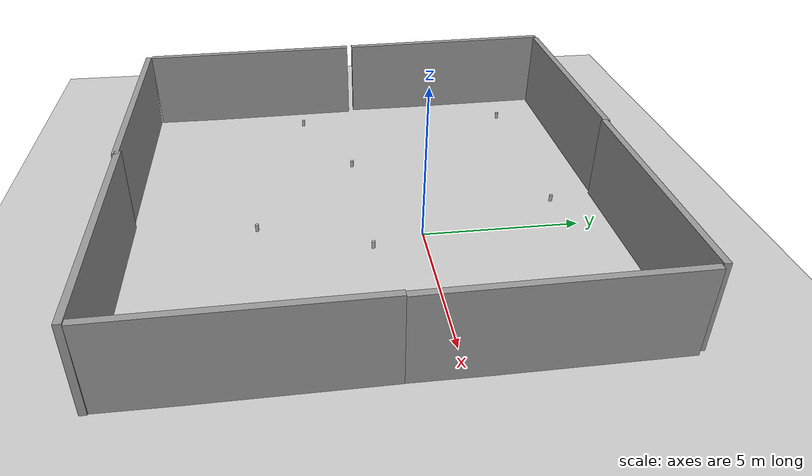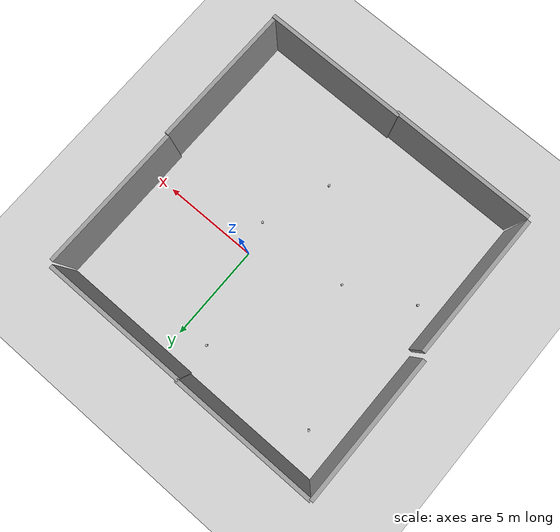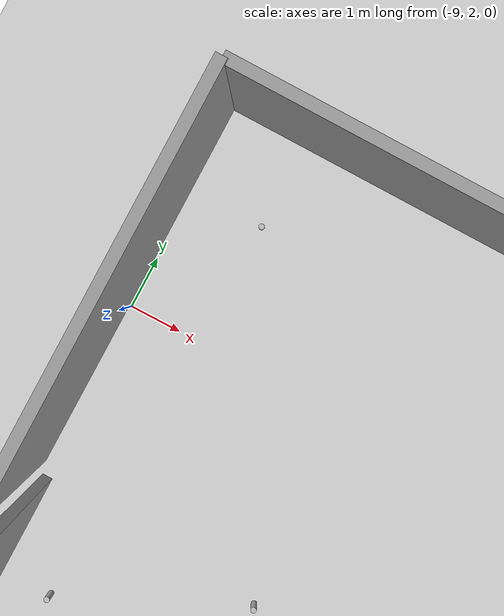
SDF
<sdf version="1.6">
 <world name="default">
  <light name="sun" type="directional">
   <pose>0 0 10 0 -0 0</pose>
   <diffuse>0.8 0.8 0.8 1</diffuse>
   <specular>0.2 0.2 0.2 1</specular>
   <attenuation>
    <range>1000</range>
    <constant>0.9</constant>
    <linear>0.01</linear>
    <quadratic>0.001</quadratic>
   </attenuation>
   <direction>-0.5 0.1 -0.9</direction>
  </light>
  <model name="ground_plane">
   <static>1</static>
   <link name="link">
    <collision name="collision">
     <geometry><plane><normal>0 0 1</normal><size>100 100</size></plane></geometry>
     <surface><friction><ode><mu>100</mu><mu2>50</mu2></ode></friction></surface>
    </collision>
    <visual name="visual">
     <cast_shadows>0</cast_shadows>
     <geometry><plane><normal>0 0 1</normal><size>100 100</size></plane></geometry>
     <material>
      <script><uri>file://media/materials/scripts/gazebo.material</uri><name>Gazebo/Grey</name></script>
     </material>
    </visual>
   </link>
  </model>
  <gravity>0 0 -9.8</gravity>
  <magnetic_field>6e-06 2.3e-05 -4.2e-05</magnetic_field>
  <atmosphere type="adiabatic"/>
  <physics name="default_physics" default="0" type="ode">
   <max_step_size>0.001</max_step_size>
   <real_time_factor>1</real_time_factor>
   <real_time_update_rate>1000</real_time_update_rate>
  </physics>
  <scene><ambient>0.4 0.4 0.4 1</ambient><background>0.7 0.7 0.7 1</background><shadows>1</shadows></scene>
  <spherical_coordinates>
   <surface_model>EARTH_WGS84</surface_model>
   <latitude_deg>0</latitude_deg>
   <longitude_deg>0</longitude_deg>
   <elevation>0</elevation>
   <heading_deg>0</heading_deg>
  </spherical_coordinates>
  <model name="grey_wall">
   <static>1</static>
   <link name="link">
    <pose>0 0 1.4 0 -0 0</pose>
    <collision name="collision"><geometry><box><size>7.5 0.2 2.8</size></box></geometry></collision>
    <visual name="visual">
     <cast_shadows>0</cast_shadows>
     <geometry><box><size>7.5 0.2 2.8</size></box></geometry>
     <material>
      <script>
       <uri>model://grey_wall/materials/scripts</uri>
       <uri>model://grey_wall/materials/textures</uri>
       <name>vrc/grey_wall</name>
      </script>
     </material>
    </visual>
   </link>
   <pose>2.06631 6.1293 0 0 -0 0</pose>
  </model>
  <model name="grey_wall_0">
   <static>1</static>
   <link name="link">
    <pose>0 0 1.4 0 -0 0</pose>
    <collision name="collision"><geometry><box><size>7.5 0.2 2.8</size></box></geometry></collision>
    <visual name="visual">
     <cast_shadows>0</cast_shadows>
     <geometry><box><size>7.5 0.2 2.8</size></box></geometry>
     <material>
      <script>
       <uri>model://grey_wall/materials/scripts</uri>
       <uri>model://grey_wall/materials/textures</uri>
       <name>vrc/grey_wall</name>
      </script>
     </material>
    </visual>
   </link>
   <pose>2.32878 -9.0557 0 0 -0 0</pose>
  </model>
  <model name="grey_wall_1">
   <static>1</static>
   <link name="link">
    <pose>0 0 1.4 0 -0 0</pose>
    <collision name="collision"><geometry><box><size>7.5 0.2 2.8</size></box></geometry></collision>
    <visual name="visual">
     <cast_shadows>0</cast_shadows>
     <geometry><box><size>7.5 0.2 2.8</size></box></geometry>
     <material>
      <script>
       <uri>model://grey_wall/materials/scripts</uri>
       <uri>model://grey_wall/materials/textures</uri>
       <name>vrc/grey_wall</name>
      </script>
     </material>
    </visual>
   </link>
   <pose>5.88882 2.21225 5e-06 -0.01704 0.013165 -1.57351</pose>
  </model>
  <model name="grey_wall_0_clone">
   <static>1</static>
   <link name="link">
    <pose>0 0 1.4 0 -0 0</pose>
    <collision name="collision"><geometry><box><size>7.5 0.2 2.8</size></box></geometry></collision>
    <visual name="visual">
     <cast_shadows>0</cast_shadows>
     <geometry><box><size>7.5 0.2 2.8</size></box></geometry>
     <material>
      <script>
       <uri>model://grey_wall/materials/scripts</uri>
       <uri>model://grey_wall/materials/textures</uri>
       <name>vrc/grey_wall</name>
      </script>
     </material>
    </visual>
   </link>
   <pose>-4.99709 -9.12244 0 0 -0 0</pose>
  </model>
  <model name="grey_wall_1_clone">
   <static>1</static>
   <link name="link">
    <pose>0 0 1.4 0 -0 0</pose>
    <collision name="collision"><geometry><box><size>7.5 0.2 2.8</size></box></geometry></collision>
    <visual name="visual">
     <cast_shadows>0</cast_shadows>
     <geometry><box><size>7.5 0.2 2.8</size></box></geometry>
     <material>
      <script>
       <uri>model://grey_wall/materials/scripts</uri>
       <uri>model://grey_wall/materials/textures</uri>
       <name>vrc/grey_wall</name>
      </script>
     </material>
    </visual>
   </link>
   <pose>5.93753 -5.29026 5e-06 -0.01704 0.013165 -1.57351</pose>
  </model>
  <model name="grey_wall_clone">
   <static>1</static>
   <link name="link">
    <pose>0 0 1.4 0 -0 0</pose>
    <collision name="collision"><geometry><box><size>7.5 0.2 2.8</size></box></geometry></collision>
    <visual name="visual">
     <cast_shadows>0</cast_shadows>
     <geometry><box><size>7.5 0.2 2.8</size></box></geometry>
     <material>
      <script>
       <uri>model://grey_wall/materials/scripts</uri>
       <uri>model://grey_wall/materials/textures</uri>
       <name>vrc/grey_wall</name>
      </script>
     </material>
    </visual>
   </link>
   <pose>-5.33336 6.18978 0 0 -0 0</pose>
  </model>
  <model name="grey_wall_1_clone_0">
   <static>1</static>
   <link name="link">
    <pose>0 0 1.4 0 -0 0</pose>
    <collision name="collision"><geometry><box><size>7.5 0.2 2.8</size></box></geometry></collision>
    <visual name="visual">
     <cast_shadows>0</cast_shadows>
     <geometry><box><size>7.5 0.2 2.8</size></box></geometry>
     <material>
      <script>
       <uri>model://grey_wall/materials/scripts</uri>
       <uri>model://grey_wall/materials/textures</uri>
       <name>vrc/grey_wall</name>
      </script>
     </material>
    </visual>
   </link>
   <pose>-9.14774 2.47602 5e-06 -0.01704 0.013165 -1.57351</pose>
  </model>
  <model name="grey_wall_1_clone_0_clone">
   <static>1</static>
   <link name="link">
    <pose>0 0 1.4 0 -0 0</pose>
    <collision name="collision"><geometry><box><size>7.5 0.2 2.8</size></box></geometry></collision>
    <visual name="visual">
     <cast_shadows>0</cast_shadows>
     <geometry><box><size>7.5 0.2 2.8</size></box></geometry>
     <material>
      <script>
       <uri>model://grey_wall/materials/scripts</uri>
       <uri>model://grey_wall/materials/textures</uri>
       <name>vrc/grey_wall</name>
      </script>
     </material>
    </visual>
   </link>
   <pose>-8.89782 -5.23777 5e-06 -0.01704 0.013165 -1.57351</pose>
  </model>
  <model name="beer">
   <link name="link">
    <pose>0 0 0.115 0 -0 0</pose>
    <inertial>
     <mass>0.39</mass>
     <inertia><ixx>0.00058</ixx><ixy>0</ixy><ixz>0</ixz><iyy>0.00058</iyy><iyz>0</iyz><izz>0.00019</izz></inertia>
    </inertial>
    <collision name="collision">
     <geometry><cylinder><radius>0.055</radius><length>0.23</length></cylinder></geometry>
    </collision>
    <visual name="visual">
     <geometry><cylinder><radius>0.055</radius><length>0.23</length></cylinder></geometry>
     <material>
      <script>
       <uri>model://beer/materials/scripts</uri>
       <uri>model://beer/materials/textures</uri>
       <name>Beer/Diffuse</name>
      </script>
     </material>
    </visual>
   </link>
   <pose>-7.57454 4.42204 -7e-06 -1e-06 0 -3.4e-05</pose>
  </model>
  <model name="beer_0">
   <link name="link">
    <pose>0 0 0.115 0 -0 0</pose>
    <inertial>
     <mass>0.39</mass>
     <inertia><ixx>0.00058</ixx><ixy>0</ixy><ixz>0</ixz><iyy>0.00058</iyy><iyz>0</iyz><izz>0.00019</izz></inertia>
    </inertial>
    <collision name="collision">
     <geometry><cylinder><radius>0.055</radius><length>0.23</length></cylinder></geometry>
    </collision>
    <visual name="visual">
     <geometry><cylinder><radius>0.055</radius><length>0.23</length></cylinder></geometry>
     <material>
      <script>
       <uri>model://beer/materials/scripts</uri>
       <uri>model://beer/materials/textures</uri>
       <name>Beer/Diffuse</name>
      </script>
     </material>
    </visual>
   </link>
   <pose>-1.3708 4.59232 -2e-06 1e-06 0 -3.1e-05</pose>
  </model>
  <model name="beer_1">
   <link name="link">
    <pose>0 0 0.115 0 -0 0</pose>
    <inertial>
     <mass>0.39</mass>
     <inertia><ixx>0.00058</ixx><ixy>0</ixy><ixz>0</ixz><iyy>0.00058</iyy><iyz>0</iyz><izz>0.00019</izz></inertia>
    </inertial>
    <collision name="collision">
     <geometry><cylinder><radius>0.055</radius><length>0.23</length></cylinder></geometry>
    </collision>
    <visual name="visual">
     <geometry><cylinder><radius>0.055</radius><length>0.23</length></cylinder></geometry>
     <material>
      <script>
       <uri>model://beer/materials/scripts</uri>
       <uri>model://beer/materials/textures</uri>
       <name>Beer/Diffuse</name>
      </script>
     </material>
    </visual>
   </link>
   <pose>-4.41749 -1.78319 -7e-06 -1e-06 -0 -3.2e-05</pose>
  </model>
  <model name="beer_2">
   <link name="link">
    <pose>0 0 0.115 0 -0 0</pose>
    <inertial>
     <mass>0.39</mass>
     <inertia><ixx>0.00058</ixx><ixy>0</ixy><ixz>0</ixz><iyy>0.00058</iyy><iyz>0</iyz><izz>0.00019</izz></inertia>
    </inertial>
    <collision name="collision">
     <geometry><cylinder><radius>0.055</radius><length>0.23</length></cylinder></geometry>
    </collision>
    <visual name="visual">
     <geometry><cylinder><radius>0.055</radius><length>0.23</length></cylinder></geometry>
     <material>
      <script>
       <uri>model://beer/materials/scripts</uri>
       <uri>model://beer/materials/textures</uri>
       <name>Beer/Diffuse</name>
      </script>
     </material>
    </visual>
   </link>
   <pose>0.498376 -1.6149 -3e-06 1e-06 0 -3.1e-05</pose>
  </model>
  <model name="beer_3">
   <link name="link">
    <pose>0 0 0.115 0 -0 0</pose>
    <inertial>
     <mass>0.39</mass>
     <inertia><ixx>0.00058</ixx><ixy>0</ixy><ixz>0</ixz><iyy>0.00058</iyy><iyz>0</iyz><izz>0.00019</izz></inertia>
    </inertial>
    <collision name="collision">
     <geometry><cylinder><radius>0.055</radius><length>0.23</length></cylinder></geometry>
    </collision>
    <visual name="visual">
     <geometry><cylinder><radius>0.055</radius><length>0.23</length></cylinder></geometry>
     <material>
      <script>
       <uri>model://beer/materials/scripts</uri>
       <uri>model://beer/materials/textures</uri>
       <name>Beer/Diffuse</name>
      </script>
     </material>
    </visual>
   </link>
   <pose>-7.81604 -3.38694 -7e-06 -1e-06 -0 -3e-05</pose>
  </model>
  <model name="beer_4">
   <link name="link">
    <pose>0 0 0.115 0 -0 0</pose>
    <inertial>
     <mass>0.39</mass>
     <inertia><ixx>0.00058</ixx><ixy>0</ixy><ixz>0</ixz><iyy>0.00058</iyy><iyz>0</iyz><izz>0.00019</izz></inertia>
    </inertial>
    <collision name="collision">
     <geometry><cylinder><radius>0.055</radius><length>0.23</length></cylinder></geometry>
    </collision>
    <visual name="visual">
     <geometry><cylinder><radius>0.055</radius><length>0.23</length></cylinder></geometry>
     <material>
      <script>
       <uri>model://beer/materials/scripts</uri>
       <uri>model://beer/materials/textures</uri>
       <name>Beer/Diffuse</name>
      </script>
     </material>
    </visual>
   </link>
   <pose>-0.800361 -5.14232 -3e-06 1e-06 -0 -2.9e-05</pose>
  </model>
 </world>
</sdf>
